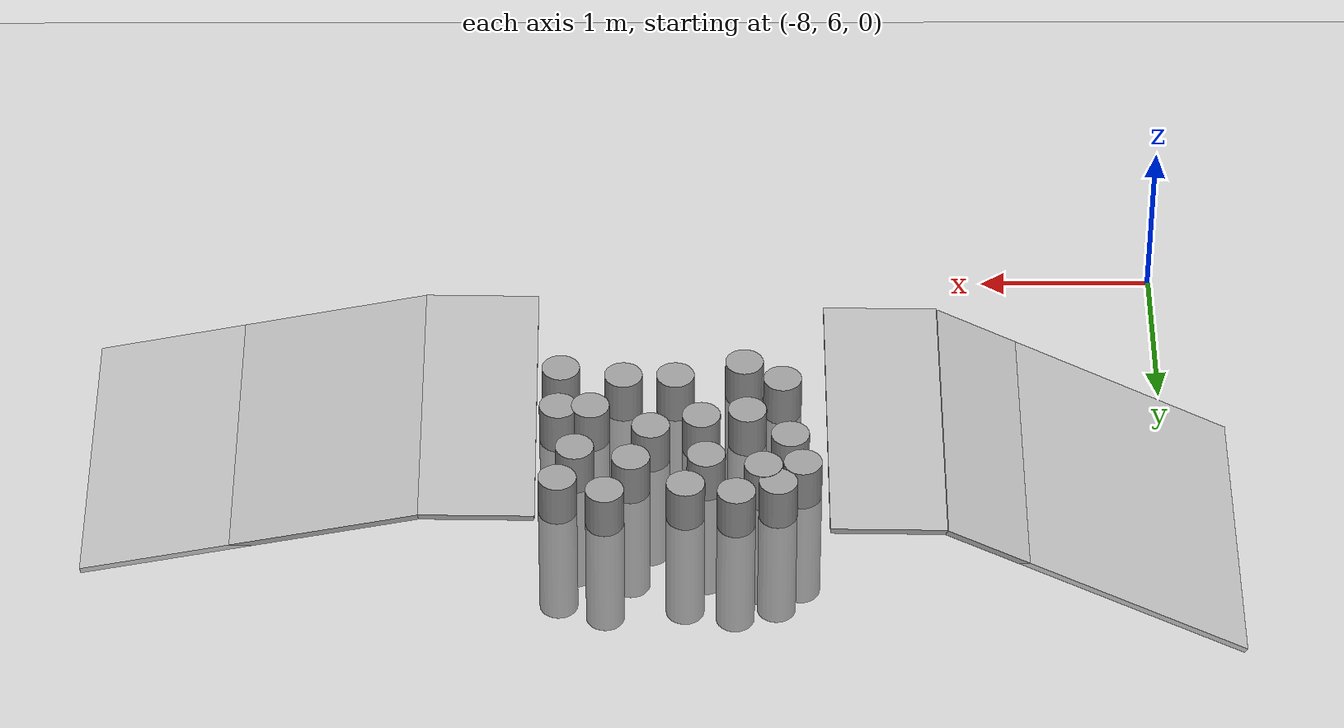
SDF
<sdf version="1.7">
 <world name="default">
  <plugin name="gazebo_ros_state" filename="libgazebo_ros_state.so">
   <ros><namespace>/gazebo</namespace></ros>
   <update_rate>1.0</update_rate>
  </plugin>
  <plugin name="gazebo_ros_properties" filename="libgazebo_ros_properties.so">
   <ros><namespace>/gazebo</namespace></ros>
   <update_rate>1.0</update_rate>
  </plugin>
  <model name="ground_plane">
   <static>1</static>
   <link name="link">
    <collision name="collision">
     <geometry><plane><normal>0 0 1</normal><size>100 100</size></plane></geometry>
     <surface>
      <contact><collide_bitmask>65535</collide_bitmask></contact>
      <friction><ode><mu>1.0</mu><mu2>1.0</mu2></ode></friction>
     </surface>
    </collision>
    <visual name="visual">
     <cast_shadows>0</cast_shadows>
     <geometry><plane><normal>0 0 1</normal><size>100 100</size></plane></geometry>
     <material>
      <script><uri>file://media/materials/scripts/gazebo.material</uri><name>Gazebo/Grey</name></script>
     </material>
    </visual>
   </link>
  </model>
  <light name="sun" type="directional">
   <pose>0 0 10 0 -0 0</pose>
   <diffuse>0.8 0.8 0.8 1</diffuse>
   <specular>0.2 0.2 0.2 1</specular>
   <attenuation>
    <range>1000</range>
    <constant>0.9</constant>
    <linear>0.01</linear>
    <quadratic>0.001</quadratic>
   </attenuation>
   <direction>-0.5 0.1 -0.9</direction>
   <spot><inner_angle>0</inner_angle><outer_angle>0</outer_angle><falloff>0</falloff></spot>
  </light>
  <gravity>0 0 -9.8</gravity>
  <magnetic_field>6e-06 2.3e-05 -4.2e-05</magnetic_field>
  <atmosphere type="adiabatic"/>
  <physics type="ode">
   <max_step_size>0.001</max_step_size>
   <real_time_factor>1</real_time_factor>
   <real_time_update_rate>1000</real_time_update_rate>
  </physics>
  <scene><ambient>0.4 0.4 0.4 1</ambient><background>0.7 0.7 0.7 1</background><shadows>1</shadows></scene>
  <spherical_coordinates>
   <surface_model>EARTH_WGS84</surface_model>
   <latitude_deg>0</latitude_deg>
   <longitude_deg>0</longitude_deg>
   <elevation>0</elevation>
   <heading_deg>0</heading_deg>
  </spherical_coordinates>
  <model name="ramped_stepping_stone_clone_1_clone_clone_2">
   <static>1</static>
   <pose>-4.0201 7.30273 0.204894 0 -0.017033 0</pose>
   <link name="link">
    <collision name="collision"><geometry><box><size>0.666252 1.89779 0.033476</size></box></geometry></collision>
    <visual name="visual"><geometry><box><size>0.666252 1.89779 0.033476</size></box></geometry></visual>
   </link>
  </model>
  <model name="ramped_stepping_stone_clone_1_clone_clone_2_clone">
   <static>1</static>
   <pose>-6.3707 7.45436 0.234508 0 -0.017033 0</pose>
   <link name="link">
    <collision name="collision"><geometry><box><size>0.666252 1.89779 0.033476</size></box></geometry></collision>
    <visual name="visual"><geometry><box><size>0.666252 1.89779 0.033476</size></box></geometry></visual>
   </link>
  </model>
  <model name="ramped_stepping_stone_clone_3">
   <static>1</static>
   <pose>-2.71446 7.30395 0 0 0.212574 0</pose>
   <link name="link">
    <collision name="collision"><geometry><box><size>1.99786 1.89779 0.033476</size></box></geometry></collision>
    <visual name="visual"><geometry><box><size>1.99786 1.89779 0.033476</size></box></geometry></visual>
   </link>
  </model>
  <model name="round_step_clone">
   <link name="link">
    <inertial>
     <mass>0.0497635</mass>
     <inertia>
      <ixx>0.00430173</ixx>
      <ixy>0</ixy>
      <ixz>0</ixz>
      <iyy>0.00430173</iyy>
      <iyz>0</iyz>
      <izz>0.00030955</izz>
     </inertia>
    </inertial>
    <pose>0.001965 -0.009653 -0.499784 1.55252 -0 0</pose>
    <visual name="visual">
     <geometry><cylinder><radius>0.111539</radius><length>1</length></cylinder></geometry>
     <material>
      <script><name>Gazebo/Grey</name><uri>file://media/materials/scripts/gazebo.material</uri></script>
      <shader type="pixel"/>
     </material>
    </visual>
    <collision name="collision">
     <geometry><cylinder><radius>0.111539</radius><length>1</length></cylinder></geometry>
     <surface>
      <friction>
       <ode><mu>1.0</mu><mu2>1.0</mu2><fdir1>0 0 0</fdir1><slip1>0</slip1><slip2>0</slip2></ode>
       <torsional>
        <coefficient>1</coefficient>
        <patch_radius>0</patch_radius>
        <surface_radius>0</surface_radius>
        <use_patch_radius>1</use_patch_radius>
        <ode><slip>0</slip></ode>
       </torsional>
      </friction>
      <bounce><restitution_coefficient>0</restitution_coefficient><threshold>1e+06</threshold></bounce>
      <contact>
       <collide_without_contact>0</collide_without_contact>
       <collide_without_contact_bitmask>1</collide_without_contact_bitmask>
       <collide_bitmask>1</collide_bitmask>
       <ode>
        <soft_cfm>0</soft_cfm>
        <soft_erp>0.2</soft_erp>
        <kp>1e+13</kp>
        <kd>1</kd>
        <max_vel>0.01</max_vel>
        <min_depth>0</min_depth>
       </ode>
       <bullet>
        <split_impulse>1</split_impulse>
        <split_impulse_penetration_threshold>-0.01</split_impulse_penetration_threshold>
        <soft_cfm>0</soft_cfm>
        <soft_erp>0.2</soft_erp>
        <kp>1e+13</kp>
        <kd>1</kd>
       </bullet>
      </contact>
     </surface>
    </collision>
   </link>
   <static>1</static>
   <pose>-4.57955 7.21951 -0.259906 1.61465 -0 0</pose>
  </model>
  <model name="round_step_clone_clone">
   <link name="link">
    <inertial>
     <mass>0.0497635</mass>
     <inertia>
      <ixx>0.00430173</ixx>
      <ixy>0</ixy>
      <ixz>0</ixz>
      <iyy>0.00430173</iyy>
      <iyz>0</iyz>
      <izz>0.00030955</izz>
     </inertia>
    </inertial>
    <pose>0.001965 -0.009653 -0.499784 1.55252 -0 0</pose>
    <visual name="visual">
     <geometry><cylinder><radius>0.111539</radius><length>1</length></cylinder></geometry>
     <material>
      <script><name>Gazebo/Grey</name><uri>file://media/materials/scripts/gazebo.material</uri></script>
      <shader type="pixel"/>
     </material>
    </visual>
    <collision name="collision">
     <geometry><cylinder><radius>0.111539</radius><length>1</length></cylinder></geometry>
     <surface>
      <friction>
       <ode><mu>1.0</mu><mu2>1.0</mu2><fdir1>0 0 0</fdir1><slip1>0</slip1><slip2>0</slip2></ode>
       <torsional>
        <coefficient>1</coefficient>
        <patch_radius>0</patch_radius>
        <surface_radius>0</surface_radius>
        <use_patch_radius>1</use_patch_radius>
        <ode><slip>0</slip></ode>
       </torsional>
      </friction>
      <bounce><restitution_coefficient>0</restitution_coefficient><threshold>1e+06</threshold></bounce>
      <contact>
       <collide_without_contact>0</collide_without_contact>
       <collide_without_contact_bitmask>1</collide_without_contact_bitmask>
       <collide_bitmask>1</collide_bitmask>
       <ode>
        <soft_cfm>0</soft_cfm>
        <soft_erp>0.2</soft_erp>
        <kp>1e+13</kp>
        <kd>1</kd>
        <max_vel>0.01</max_vel>
        <min_depth>0</min_depth>
       </ode>
       <bullet>
        <split_impulse>1</split_impulse>
        <split_impulse_penetration_threshold>-0.01</split_impulse_penetration_threshold>
        <soft_cfm>0</soft_cfm>
        <soft_erp>0.2</soft_erp>
        <kp>1e+13</kp>
        <kd>1</kd>
       </bullet>
      </contact>
     </surface>
    </collision>
   </link>
   <static>1</static>
   <pose>-4.75434 7.58258 -0.259907 1.61465 -0 0</pose>
  </model>
  <model name="round_step_clone_clone_0">
   <link name="link">
    <inertial>
     <mass>0.0497635</mass>
     <inertia>
      <ixx>0.00430173</ixx>
      <ixy>0</ixy>
      <ixz>0</ixz>
      <iyy>0.00430173</iyy>
      <iyz>0</iyz>
      <izz>0.00030955</izz>
     </inertia>
    </inertial>
    <pose>0.001965 -0.009653 -0.499784 1.55252 -0 0</pose>
    <visual name="visual">
     <geometry><cylinder><radius>0.111539</radius><length>1</length></cylinder></geometry>
     <material>
      <script><name>Gazebo/Grey</name><uri>file://media/materials/scripts/gazebo.material</uri></script>
      <shader type="pixel"/>
     </material>
    </visual>
    <collision name="collision">
     <geometry><cylinder><radius>0.111539</radius><length>1</length></cylinder></geometry>
     <surface>
      <friction>
       <ode><mu>1.0</mu><mu2>1.0</mu2><fdir1>0 0 0</fdir1><slip1>0</slip1><slip2>0</slip2></ode>
       <torsional>
        <coefficient>1</coefficient>
        <patch_radius>0</patch_radius>
        <surface_radius>0</surface_radius>
        <use_patch_radius>1</use_patch_radius>
        <ode><slip>0</slip></ode>
       </torsional>
      </friction>
      <bounce><restitution_coefficient>0</restitution_coefficient><threshold>1e+06</threshold></bounce>
      <contact>
       <collide_without_contact>0</collide_without_contact>
       <collide_without_contact_bitmask>1</collide_without_contact_bitmask>
       <collide_bitmask>1</collide_bitmask>
       <ode>
        <soft_cfm>0</soft_cfm>
        <soft_erp>0.2</soft_erp>
        <kp>1e+13</kp>
        <kd>1</kd>
        <max_vel>0.01</max_vel>
        <min_depth>0</min_depth>
       </ode>
       <bullet>
        <split_impulse>1</split_impulse>
        <split_impulse_penetration_threshold>-0.01</split_impulse_penetration_threshold>
        <soft_cfm>0</soft_cfm>
        <soft_erp>0.2</soft_erp>
        <kp>1e+13</kp>
        <kd>1</kd>
       </bullet>
      </contact>
     </surface>
    </collision>
   </link>
   <static>1</static>
   <pose>-4.90346 7.30763 -0.259907 1.61465 -0 0</pose>
  </model>
  <model name="round_step_clone_clone_1">
   <link name="link">
    <inertial>
     <mass>0.0497635</mass>
     <inertia>
      <ixx>0.00430173</ixx>
      <ixy>0</ixy>
      <ixz>0</ixz>
      <iyy>0.00430173</iyy>
      <iyz>0</iyz>
      <izz>0.00030955</izz>
     </inertia>
    </inertial>
    <pose>0.001965 -0.009653 -0.499784 1.55252 -0 0</pose>
    <visual name="visual">
     <geometry><cylinder><radius>0.111539</radius><length>1</length></cylinder></geometry>
     <material>
      <script><name>Gazebo/Grey</name><uri>file://media/materials/scripts/gazebo.material</uri></script>
      <shader type="pixel"/>
     </material>
    </visual>
    <collision name="collision">
     <geometry><cylinder><radius>0.111539</radius><length>1</length></cylinder></geometry>
     <surface>
      <friction>
       <ode><mu>1.0</mu><mu2>1.0</mu2><fdir1>0 0 0</fdir1><slip1>0</slip1><slip2>0</slip2></ode>
       <torsional>
        <coefficient>1</coefficient>
        <patch_radius>0</patch_radius>
        <surface_radius>0</surface_radius>
        <use_patch_radius>1</use_patch_radius>
        <ode><slip>0</slip></ode>
       </torsional>
      </friction>
      <bounce><restitution_coefficient>0</restitution_coefficient><threshold>1e+06</threshold></bounce>
      <contact>
       <collide_without_contact>0</collide_without_contact>
       <collide_without_contact_bitmask>1</collide_without_contact_bitmask>
       <collide_bitmask>1</collide_bitmask>
       <ode>
        <soft_cfm>0</soft_cfm>
        <soft_erp>0.2</soft_erp>
        <kp>1e+13</kp>
        <kd>1</kd>
        <max_vel>0.01</max_vel>
        <min_depth>0</min_depth>
       </ode>
       <bullet>
        <split_impulse>1</split_impulse>
        <split_impulse_penetration_threshold>-0.01</split_impulse_penetration_threshold>
        <soft_cfm>0</soft_cfm>
        <soft_erp>0.2</soft_erp>
        <kp>1e+13</kp>
        <kd>1</kd>
       </bullet>
      </contact>
     </surface>
    </collision>
   </link>
   <static>1</static>
   <pose>-4.66801 6.86691 -0.259907 1.61465 -0 0</pose>
  </model>
  <model name="round_step_clone_clone_2">
   <link name="link">
    <inertial>
     <mass>0.0497635</mass>
     <inertia>
      <ixx>0.00430173</ixx>
      <ixy>0</ixy>
      <ixz>0</ixz>
      <iyy>0.00430173</iyy>
      <iyz>0</iyz>
      <izz>0.00030955</izz>
     </inertia>
    </inertial>
    <pose>0.001965 -0.009653 -0.499784 1.55252 -0 0</pose>
    <visual name="visual">
     <geometry><cylinder><radius>0.111539</radius><length>1</length></cylinder></geometry>
     <material>
      <script><name>Gazebo/Grey</name><uri>file://media/materials/scripts/gazebo.material</uri></script>
      <shader type="pixel"/>
     </material>
    </visual>
    <collision name="collision">
     <geometry><cylinder><radius>0.111539</radius><length>1</length></cylinder></geometry>
     <surface>
      <friction>
       <ode><mu>1.0</mu><mu2>1.0</mu2><fdir1>0 0 0</fdir1><slip1>0</slip1><slip2>0</slip2></ode>
       <torsional>
        <coefficient>1</coefficient>
        <patch_radius>0</patch_radius>
        <surface_radius>0</surface_radius>
        <use_patch_radius>1</use_patch_radius>
        <ode><slip>0</slip></ode>
       </torsional>
      </friction>
      <bounce><restitution_coefficient>0</restitution_coefficient><threshold>1e+06</threshold></bounce>
      <contact>
       <collide_without_contact>0</collide_without_contact>
       <collide_without_contact_bitmask>1</collide_without_contact_bitmask>
       <collide_bitmask>1</collide_bitmask>
       <ode>
        <soft_cfm>0</soft_cfm>
        <soft_erp>0.2</soft_erp>
        <kp>1e+13</kp>
        <kd>1</kd>
        <max_vel>0.01</max_vel>
        <min_depth>0</min_depth>
       </ode>
       <bullet>
        <split_impulse>1</split_impulse>
        <split_impulse_penetration_threshold>-0.01</split_impulse_penetration_threshold>
        <soft_cfm>0</soft_cfm>
        <soft_erp>0.2</soft_erp>
        <kp>1e+13</kp>
        <kd>1</kd>
       </bullet>
      </contact>
     </surface>
    </collision>
   </link>
   <static>1</static>
   <pose>-5.0186 7.03914 -0.259907 1.61465 -0 0</pose>
  </model>
  <model name="round_step_clone_clone_3">
   <link name="link">
    <inertial>
     <mass>0.0497635</mass>
     <inertia>
      <ixx>0.00430173</ixx>
      <ixy>0</ixy>
      <ixz>0</ixz>
      <iyy>0.00430173</iyy>
      <iyz>0</iyz>
      <izz>0.00030955</izz>
     </inertia>
    </inertial>
    <pose>0.001965 -0.009653 -0.499784 1.55252 -0 0</pose>
    <visual name="visual">
     <geometry><cylinder><radius>0.111539</radius><length>1</length></cylinder></geometry>
     <material>
      <script><name>Gazebo/Grey</name><uri>file://media/materials/scripts/gazebo.material</uri></script>
      <shader type="pixel"/>
     </material>
    </visual>
    <collision name="collision">
     <geometry><cylinder><radius>0.111539</radius><length>1</length></cylinder></geometry>
     <surface>
      <friction>
       <ode><mu>1.0</mu><mu2>1.0</mu2><fdir1>0 0 0</fdir1><slip1>0</slip1><slip2>0</slip2></ode>
       <torsional>
        <coefficient>1</coefficient>
        <patch_radius>0</patch_radius>
        <surface_radius>0</surface_radius>
        <use_patch_radius>1</use_patch_radius>
        <ode><slip>0</slip></ode>
       </torsional>
      </friction>
      <bounce><restitution_coefficient>0</restitution_coefficient><threshold>1e+06</threshold></bounce>
      <contact>
       <collide_without_contact>0</collide_without_contact>
       <collide_without_contact_bitmask>1</collide_without_contact_bitmask>
       <collide_bitmask>1</collide_bitmask>
       <ode>
        <soft_cfm>0</soft_cfm>
        <soft_erp>0.2</soft_erp>
        <kp>1e+13</kp>
        <kd>1</kd>
        <max_vel>0.01</max_vel>
        <min_depth>0</min_depth>
       </ode>
       <bullet>
        <split_impulse>1</split_impulse>
        <split_impulse_penetration_threshold>-0.01</split_impulse_penetration_threshold>
        <soft_cfm>0</soft_cfm>
        <soft_erp>0.2</soft_erp>
        <kp>1e+13</kp>
        <kd>1</kd>
       </bullet>
      </contact>
     </surface>
    </collision>
   </link>
   <static>1</static>
   <pose>-5.21817 7.53102 -0.259907 1.61465 -0 0</pose>
  </model>
  <model name="round_step_clone_clone_4">
   <link name="link">
    <inertial>
     <mass>0.0497635</mass>
     <inertia>
      <ixx>0.00430173</ixx>
      <ixy>0</ixy>
      <ixz>0</ixz>
      <iyy>0.00430173</iyy>
      <iyz>0</iyz>
      <izz>0.00030955</izz>
     </inertia>
    </inertial>
    <pose>0.001965 -0.009653 -0.499784 1.55252 -0 0</pose>
    <visual name="visual">
     <geometry><cylinder><radius>0.111539</radius><length>1</length></cylinder></geometry>
     <material>
      <script><name>Gazebo/Grey</name><uri>file://media/materials/scripts/gazebo.material</uri></script>
      <shader type="pixel"/>
     </material>
    </visual>
    <collision name="collision">
     <geometry><cylinder><radius>0.111539</radius><length>1</length></cylinder></geometry>
     <surface>
      <friction>
       <ode><mu>1.0</mu><mu2>1.0</mu2><fdir1>0 0 0</fdir1><slip1>0</slip1><slip2>0</slip2></ode>
       <torsional>
        <coefficient>1</coefficient>
        <patch_radius>0</patch_radius>
        <surface_radius>0</surface_radius>
        <use_patch_radius>1</use_patch_radius>
        <ode><slip>0</slip></ode>
       </torsional>
      </friction>
      <bounce><restitution_coefficient>0</restitution_coefficient><threshold>1e+06</threshold></bounce>
      <contact>
       <collide_without_contact>0</collide_without_contact>
       <collide_without_contact_bitmask>1</collide_without_contact_bitmask>
       <collide_bitmask>1</collide_bitmask>
       <ode>
        <soft_cfm>0</soft_cfm>
        <soft_erp>0.2</soft_erp>
        <kp>1e+13</kp>
        <kd>1</kd>
        <max_vel>0.01</max_vel>
        <min_depth>0</min_depth>
       </ode>
       <bullet>
        <split_impulse>1</split_impulse>
        <split_impulse_penetration_threshold>-0.01</split_impulse_penetration_threshold>
        <soft_cfm>0</soft_cfm>
        <soft_erp>0.2</soft_erp>
        <kp>1e+13</kp>
        <kd>1</kd>
       </bullet>
      </contact>
     </surface>
    </collision>
   </link>
   <static>1</static>
   <pose>-5.33829 7.28402 -0.259907 1.61465 -0 0</pose>
  </model>
  <model name="round_step_clone_clone_5">
   <link name="link">
    <inertial>
     <mass>0.0497635</mass>
     <inertia>
      <ixx>0.00430173</ixx>
      <ixy>0</ixy>
      <ixz>0</ixz>
      <iyy>0.00430173</iyy>
      <iyz>0</iyz>
      <izz>0.00030955</izz>
     </inertia>
    </inertial>
    <pose>0.001965 -0.009653 -0.499784 1.55252 -0 0</pose>
    <visual name="visual">
     <geometry><cylinder><radius>0.111539</radius><length>1</length></cylinder></geometry>
     <material>
      <script><name>Gazebo/Grey</name><uri>file://media/materials/scripts/gazebo.material</uri></script>
      <shader type="pixel"/>
     </material>
    </visual>
    <collision name="collision">
     <geometry><cylinder><radius>0.111539</radius><length>1</length></cylinder></geometry>
     <surface>
      <friction>
       <ode><mu>1.0</mu><mu2>1.0</mu2><fdir1>0 0 0</fdir1><slip1>0</slip1><slip2>0</slip2></ode>
       <torsional>
        <coefficient>1</coefficient>
        <patch_radius>0</patch_radius>
        <surface_radius>0</surface_radius>
        <use_patch_radius>1</use_patch_radius>
        <ode><slip>0</slip></ode>
       </torsional>
      </friction>
      <bounce><restitution_coefficient>0</restitution_coefficient><threshold>1e+06</threshold></bounce>
      <contact>
       <collide_without_contact>0</collide_without_contact>
       <collide_without_contact_bitmask>1</collide_without_contact_bitmask>
       <collide_bitmask>1</collide_bitmask>
       <ode>
        <soft_cfm>0</soft_cfm>
        <soft_erp>0.2</soft_erp>
        <kp>1e+13</kp>
        <kd>1</kd>
        <max_vel>0.01</max_vel>
        <min_depth>0</min_depth>
       </ode>
       <bullet>
        <split_impulse>1</split_impulse>
        <split_impulse_penetration_threshold>-0.01</split_impulse_penetration_threshold>
        <soft_cfm>0</soft_cfm>
        <soft_erp>0.2</soft_erp>
        <kp>1e+13</kp>
        <kd>1</kd>
       </bullet>
      </contact>
     </surface>
    </collision>
   </link>
   <static>1</static>
   <pose>-5.31255 6.94999 -0.259907 1.61465 -0 0</pose>
  </model>
  <model name="round_step_clone_clone_6">
   <link name="link">
    <inertial>
     <mass>0.0497635</mass>
     <inertia>
      <ixx>0.00430173</ixx>
      <ixy>0</ixy>
      <ixz>0</ixz>
      <iyy>0.00430173</iyy>
      <iyz>0</iyz>
      <izz>0.00030955</izz>
     </inertia>
    </inertial>
    <pose>0.001965 -0.009653 -0.499784 1.55252 -0 0</pose>
    <visual name="visual">
     <geometry><cylinder><radius>0.111539</radius><length>1</length></cylinder></geometry>
     <material>
      <script><name>Gazebo/Grey</name><uri>file://media/materials/scripts/gazebo.material</uri></script>
      <shader type="pixel"/>
     </material>
    </visual>
    <collision name="collision">
     <geometry><cylinder><radius>0.111539</radius><length>1</length></cylinder></geometry>
     <surface>
      <friction>
       <ode><mu>1.0</mu><mu2>1.0</mu2><fdir1>0 0 0</fdir1><slip1>0</slip1><slip2>0</slip2></ode>
       <torsional>
        <coefficient>1</coefficient>
        <patch_radius>0</patch_radius>
        <surface_radius>0</surface_radius>
        <use_patch_radius>1</use_patch_radius>
        <ode><slip>0</slip></ode>
       </torsional>
      </friction>
      <bounce><restitution_coefficient>0</restitution_coefficient><threshold>1e+06</threshold></bounce>
      <contact>
       <collide_without_contact>0</collide_without_contact>
       <collide_without_contact_bitmask>1</collide_without_contact_bitmask>
       <collide_bitmask>1</collide_bitmask>
       <ode>
        <soft_cfm>0</soft_cfm>
        <soft_erp>0.2</soft_erp>
        <kp>1e+13</kp>
        <kd>1</kd>
        <max_vel>0.01</max_vel>
        <min_depth>0</min_depth>
       </ode>
       <bullet>
        <split_impulse>1</split_impulse>
        <split_impulse_penetration_threshold>-0.01</split_impulse_penetration_threshold>
        <soft_cfm>0</soft_cfm>
        <soft_erp>0.2</soft_erp>
        <kp>1e+13</kp>
        <kd>1</kd>
       </bullet>
      </contact>
     </surface>
    </collision>
   </link>
   <static>1</static>
   <pose>-4.85952 6.60455 -0.259907 1.61465 -0 0</pose>
  </model>
  <model name="round_step_clone_clone_7">
   <link name="link">
    <inertial>
     <mass>0.0497635</mass>
     <inertia>
      <ixx>0.00430173</ixx>
      <ixy>0</ixy>
      <ixz>0</ixz>
      <iyy>0.00430173</iyy>
      <iyz>0</iyz>
      <izz>0.00030955</izz>
     </inertia>
    </inertial>
    <pose>0.001965 -0.009653 -0.499784 1.55252 -0 0</pose>
    <visual name="visual">
     <geometry><cylinder><radius>0.111539</radius><length>1</length></cylinder></geometry>
     <material>
      <script><name>Gazebo/Grey</name><uri>file://media/materials/scripts/gazebo.material</uri></script>
      <shader type="pixel"/>
     </material>
    </visual>
    <collision name="collision">
     <geometry><cylinder><radius>0.111539</radius><length>1</length></cylinder></geometry>
     <surface>
      <friction>
       <ode><mu>1.0</mu><mu2>1.0</mu2><fdir1>0 0 0</fdir1><slip1>0</slip1><slip2>0</slip2></ode>
       <torsional>
        <coefficient>1</coefficient>
        <patch_radius>0</patch_radius>
        <surface_radius>0</surface_radius>
        <use_patch_radius>1</use_patch_radius>
        <ode><slip>0</slip></ode>
       </torsional>
      </friction>
      <bounce><restitution_coefficient>0</restitution_coefficient><threshold>1e+06</threshold></bounce>
      <contact>
       <collide_without_contact>0</collide_without_contact>
       <collide_without_contact_bitmask>1</collide_without_contact_bitmask>
       <collide_bitmask>1</collide_bitmask>
       <ode>
        <soft_cfm>0</soft_cfm>
        <soft_erp>0.2</soft_erp>
        <kp>1e+13</kp>
        <kd>1</kd>
        <max_vel>0.01</max_vel>
        <min_depth>0</min_depth>
       </ode>
       <bullet>
        <split_impulse>1</split_impulse>
        <split_impulse_penetration_threshold>-0.01</split_impulse_penetration_threshold>
        <soft_cfm>0</soft_cfm>
        <soft_erp>0.2</soft_erp>
        <kp>1e+13</kp>
        <kd>1</kd>
       </bullet>
      </contact>
     </surface>
    </collision>
   </link>
   <static>1</static>
   <pose>-5.58092 6.90475 -0.259907 1.61465 -0 0</pose>
  </model>
  <model name="round_step_clone_clone_8">
   <link name="link">
    <inertial>
     <mass>0.0497635</mass>
     <inertia>
      <ixx>0.00430173</ixx>
      <ixy>0</ixy>
      <ixz>0</ixz>
      <iyy>0.00430173</iyy>
      <iyz>0</iyz>
      <izz>0.00030955</izz>
     </inertia>
    </inertial>
    <pose>0.001965 -0.009653 -0.499784 1.55252 -0 0</pose>
    <visual name="visual">
     <geometry><cylinder><radius>0.111539</radius><length>1</length></cylinder></geometry>
     <material>
      <script><name>Gazebo/Grey</name><uri>file://media/materials/scripts/gazebo.material</uri></script>
      <shader type="pixel"/>
     </material>
    </visual>
    <collision name="collision">
     <geometry><cylinder><radius>0.111539</radius><length>1</length></cylinder></geometry>
     <surface>
      <friction>
       <ode><mu>1.0</mu><mu2>1.0</mu2><fdir1>0 0 0</fdir1><slip1>0</slip1><slip2>0</slip2></ode>
       <torsional>
        <coefficient>1</coefficient>
        <patch_radius>0</patch_radius>
        <surface_radius>0</surface_radius>
        <use_patch_radius>1</use_patch_radius>
        <ode><slip>0</slip></ode>
       </torsional>
      </friction>
      <bounce><restitution_coefficient>0</restitution_coefficient><threshold>1e+06</threshold></bounce>
      <contact>
       <collide_without_contact>0</collide_without_contact>
       <collide_without_contact_bitmask>1</collide_without_contact_bitmask>
       <collide_bitmask>1</collide_bitmask>
       <ode>
        <soft_cfm>0</soft_cfm>
        <soft_erp>0.2</soft_erp>
        <kp>1e+13</kp>
        <kd>1</kd>
        <max_vel>0.01</max_vel>
        <min_depth>0</min_depth>
       </ode>
       <bullet>
        <split_impulse>1</split_impulse>
        <split_impulse_penetration_threshold>-0.01</split_impulse_penetration_threshold>
        <soft_cfm>0</soft_cfm>
        <soft_erp>0.2</soft_erp>
        <kp>1e+13</kp>
        <kd>1</kd>
       </bullet>
      </contact>
     </surface>
    </collision>
   </link>
   <static>1</static>
   <pose>-5.66805 7.36995 -0.259907 1.61465 -0 0</pose>
  </model>
  <model name="round_step_clone_clone_9">
   <link name="link">
    <inertial>
     <mass>0.0497635</mass>
     <inertia>
      <ixx>0.00430173</ixx>
      <ixy>0</ixy>
      <ixz>0</ixz>
      <iyy>0.00430173</iyy>
      <iyz>0</iyz>
      <izz>0.00030955</izz>
     </inertia>
    </inertial>
    <pose>0.001965 -0.009653 -0.499784 1.55252 -0 0</pose>
    <visual name="visual">
     <geometry><cylinder><radius>0.111539</radius><length>1</length></cylinder></geometry>
     <material>
      <script><name>Gazebo/Grey</name><uri>file://media/materials/scripts/gazebo.material</uri></script>
      <shader type="pixel"/>
     </material>
    </visual>
    <collision name="collision">
     <geometry><cylinder><radius>0.111539</radius><length>1</length></cylinder></geometry>
     <surface>
      <friction>
       <ode><mu>1.0</mu><mu2>1.0</mu2><fdir1>0 0 0</fdir1><slip1>0</slip1><slip2>0</slip2></ode>
       <torsional>
        <coefficient>1</coefficient>
        <patch_radius>0</patch_radius>
        <surface_radius>0</surface_radius>
        <use_patch_radius>1</use_patch_radius>
        <ode><slip>0</slip></ode>
       </torsional>
      </friction>
      <bounce><restitution_coefficient>0</restitution_coefficient><threshold>1e+06</threshold></bounce>
      <contact>
       <collide_without_contact>0</collide_without_contact>
       <collide_without_contact_bitmask>1</collide_without_contact_bitmask>
       <collide_bitmask>1</collide_bitmask>
       <ode>
        <soft_cfm>0</soft_cfm>
        <soft_erp>0.2</soft_erp>
        <kp>1e+13</kp>
        <kd>1</kd>
        <max_vel>0.01</max_vel>
        <min_depth>0</min_depth>
       </ode>
       <bullet>
        <split_impulse>1</split_impulse>
        <split_impulse_penetration_threshold>-0.01</split_impulse_penetration_threshold>
        <soft_cfm>0</soft_cfm>
        <soft_erp>0.2</soft_erp>
        <kp>1e+13</kp>
        <kd>1</kd>
       </bullet>
      </contact>
     </surface>
    </collision>
   </link>
   <static>1</static>
   <pose>-5.50936 7.59353 -0.259907 1.61465 -0 0</pose>
  </model>
  <model name="round_step_clone_clone_10">
   <link name="link">
    <inertial>
     <mass>0.0497635</mass>
     <inertia>
      <ixx>0.00430173</ixx>
      <ixy>0</ixy>
      <ixz>0</ixz>
      <iyy>0.00430173</iyy>
      <iyz>0</iyz>
      <izz>0.00030955</izz>
     </inertia>
    </inertial>
    <pose>0.001965 -0.009653 -0.499784 1.55252 -0 0</pose>
    <visual name="visual">
     <geometry><cylinder><radius>0.111539</radius><length>1</length></cylinder></geometry>
     <material>
      <script><name>Gazebo/Grey</name><uri>file://media/materials/scripts/gazebo.material</uri></script>
      <shader type="pixel"/>
     </material>
    </visual>
    <collision name="collision">
     <geometry><cylinder><radius>0.111539</radius><length>1</length></cylinder></geometry>
     <surface>
      <friction>
       <ode><mu>1.0</mu><mu2>1.0</mu2><fdir1>0 0 0</fdir1><slip1>0</slip1><slip2>0</slip2></ode>
       <torsional>
        <coefficient>1</coefficient>
        <patch_radius>0</patch_radius>
        <surface_radius>0</surface_radius>
        <use_patch_radius>1</use_patch_radius>
        <ode><slip>0</slip></ode>
       </torsional>
      </friction>
      <bounce><restitution_coefficient>0</restitution_coefficient><threshold>1e+06</threshold></bounce>
      <contact>
       <collide_without_contact>0</collide_without_contact>
       <collide_without_contact_bitmask>1</collide_without_contact_bitmask>
       <collide_bitmask>1</collide_bitmask>
       <ode>
        <soft_cfm>0</soft_cfm>
        <soft_erp>0.2</soft_erp>
        <kp>1e+13</kp>
        <kd>1</kd>
        <max_vel>0.01</max_vel>
        <min_depth>0</min_depth>
       </ode>
       <bullet>
        <split_impulse>1</split_impulse>
        <split_impulse_penetration_threshold>-0.01</split_impulse_penetration_threshold>
        <soft_cfm>0</soft_cfm>
        <soft_erp>0.2</soft_erp>
        <kp>1e+13</kp>
        <kd>1</kd>
       </bullet>
      </contact>
     </surface>
    </collision>
   </link>
   <static>1</static>
   <pose>-5.82641 7.11341 -0.259907 1.61465 -0 0</pose>
  </model>
  <model name="round_step_clone_clone_11">
   <link name="link">
    <inertial>
     <mass>0.0497635</mass>
     <inertia>
      <ixx>0.00430173</ixx>
      <ixy>0</ixy>
      <ixz>0</ixz>
      <iyy>0.00430173</iyy>
      <iyz>0</iyz>
      <izz>0.00030955</izz>
     </inertia>
    </inertial>
    <pose>0.001965 -0.009653 -0.499784 1.55252 -0 0</pose>
    <visual name="visual">
     <geometry><cylinder><radius>0.111539</radius><length>1</length></cylinder></geometry>
     <material>
      <script><name>Gazebo/Grey</name><uri>file://media/materials/scripts/gazebo.material</uri></script>
      <shader type="pixel"/>
     </material>
    </visual>
    <collision name="collision">
     <geometry><cylinder><radius>0.111539</radius><length>1</length></cylinder></geometry>
     <surface>
      <friction>
       <ode><mu>1.0</mu><mu2>1.0</mu2><fdir1>0 0 0</fdir1><slip1>0</slip1><slip2>0</slip2></ode>
       <torsional>
        <coefficient>1</coefficient>
        <patch_radius>0</patch_radius>
        <surface_radius>0</surface_radius>
        <use_patch_radius>1</use_patch_radius>
        <ode><slip>0</slip></ode>
       </torsional>
      </friction>
      <bounce><restitution_coefficient>0</restitution_coefficient><threshold>1e+06</threshold></bounce>
      <contact>
       <collide_without_contact>0</collide_without_contact>
       <collide_without_contact_bitmask>1</collide_without_contact_bitmask>
       <collide_bitmask>1</collide_bitmask>
       <ode>
        <soft_cfm>0</soft_cfm>
        <soft_erp>0.2</soft_erp>
        <kp>1e+13</kp>
        <kd>1</kd>
        <max_vel>0.01</max_vel>
        <min_depth>0</min_depth>
       </ode>
       <bullet>
        <split_impulse>1</split_impulse>
        <split_impulse_penetration_threshold>-0.01</split_impulse_penetration_threshold>
        <soft_cfm>0</soft_cfm>
        <soft_erp>0.2</soft_erp>
        <kp>1e+13</kp>
        <kd>1</kd>
       </bullet>
      </contact>
     </surface>
    </collision>
   </link>
   <static>1</static>
   <pose>-5.16319 6.60487 -0.259907 1.61465 -0 0</pose>
  </model>
  <model name="round_step_clone_clone_12">
   <link name="link">
    <inertial>
     <mass>0.0497635</mass>
     <inertia>
      <ixx>0.00430173</ixx>
      <ixy>0</ixy>
      <ixz>0</ixz>
      <iyy>0.00430173</iyy>
      <iyz>0</iyz>
      <izz>0.00030955</izz>
     </inertia>
    </inertial>
    <pose>0.001965 -0.009653 -0.499784 1.55252 -0 0</pose>
    <visual name="visual">
     <geometry><cylinder><radius>0.111539</radius><length>1</length></cylinder></geometry>
     <material>
      <script><name>Gazebo/Grey</name><uri>file://media/materials/scripts/gazebo.material</uri></script>
      <shader type="pixel"/>
     </material>
    </visual>
    <collision name="collision">
     <geometry><cylinder><radius>0.111539</radius><length>1</length></cylinder></geometry>
     <surface>
      <friction>
       <ode><mu>1.0</mu><mu2>1.0</mu2><fdir1>0 0 0</fdir1><slip1>0</slip1><slip2>0</slip2></ode>
       <torsional>
        <coefficient>1</coefficient>
        <patch_radius>0</patch_radius>
        <surface_radius>0</surface_radius>
        <use_patch_radius>1</use_patch_radius>
        <ode><slip>0</slip></ode>
       </torsional>
      </friction>
      <bounce><restitution_coefficient>0</restitution_coefficient><threshold>1e+06</threshold></bounce>
      <contact>
       <collide_without_contact>0</collide_without_contact>
       <collide_without_contact_bitmask>1</collide_without_contact_bitmask>
       <collide_bitmask>1</collide_bitmask>
       <ode>
        <soft_cfm>0</soft_cfm>
        <soft_erp>0.2</soft_erp>
        <kp>1e+13</kp>
        <kd>1</kd>
        <max_vel>0.01</max_vel>
        <min_depth>0</min_depth>
       </ode>
       <bullet>
        <split_impulse>1</split_impulse>
        <split_impulse_penetration_threshold>-0.01</split_impulse_penetration_threshold>
        <soft_cfm>0</soft_cfm>
        <soft_erp>0.2</soft_erp>
        <kp>1e+13</kp>
        <kd>1</kd>
       </bullet>
      </contact>
     </surface>
    </collision>
   </link>
   <static>1</static>
   <pose>-5.56848 6.49181 -0.259907 1.61465 -0 0</pose>
  </model>
  <model name="round_step_clone_clone_13">
   <link name="link">
    <inertial>
     <mass>0.0497635</mass>
     <inertia>
      <ixx>0.00430173</ixx>
      <ixy>0</ixy>
      <ixz>0</ixz>
      <iyy>0.00430173</iyy>
      <iyz>0</iyz>
      <izz>0.00030955</izz>
     </inertia>
    </inertial>
    <pose>0.001965 -0.009653 -0.499784 1.55252 -0 0</pose>
    <visual name="visual">
     <geometry><cylinder><radius>0.111539</radius><length>1</length></cylinder></geometry>
     <material>
      <script><name>Gazebo/Grey</name><uri>file://media/materials/scripts/gazebo.material</uri></script>
      <shader type="pixel"/>
     </material>
    </visual>
    <collision name="collision">
     <geometry><cylinder><radius>0.111539</radius><length>1</length></cylinder></geometry>
     <surface>
      <friction>
       <ode><mu>1.0</mu><mu2>1.0</mu2><fdir1>0 0 0</fdir1><slip1>0</slip1><slip2>0</slip2></ode>
       <torsional>
        <coefficient>1</coefficient>
        <patch_radius>0</patch_radius>
        <surface_radius>0</surface_radius>
        <use_patch_radius>1</use_patch_radius>
        <ode><slip>0</slip></ode>
       </torsional>
      </friction>
      <bounce><restitution_coefficient>0</restitution_coefficient><threshold>1e+06</threshold></bounce>
      <contact>
       <collide_without_contact>0</collide_without_contact>
       <collide_without_contact_bitmask>1</collide_without_contact_bitmask>
       <collide_bitmask>1</collide_bitmask>
       <ode>
        <soft_cfm>0</soft_cfm>
        <soft_erp>0.2</soft_erp>
        <kp>1e+13</kp>
        <kd>1</kd>
        <max_vel>0.01</max_vel>
        <min_depth>0</min_depth>
       </ode>
       <bullet>
        <split_impulse>1</split_impulse>
        <split_impulse_penetration_threshold>-0.01</split_impulse_penetration_threshold>
        <soft_cfm>0</soft_cfm>
        <soft_erp>0.2</soft_erp>
        <kp>1e+13</kp>
        <kd>1</kd>
       </bullet>
      </contact>
     </surface>
    </collision>
   </link>
   <static>1</static>
   <pose>-5.78977 6.63593 -0.259907 1.61465 -0 0</pose>
  </model>
  <model name="round_step_clone_clone_14">
   <link name="link">
    <inertial>
     <mass>0.0497635</mass>
     <inertia>
      <ixx>0.00430173</ixx>
      <ixy>0</ixy>
      <ixz>0</ixz>
      <iyy>0.00430173</iyy>
      <iyz>0</iyz>
      <izz>0.00030955</izz>
     </inertia>
    </inertial>
    <pose>0.001965 -0.009653 -0.499784 1.55252 -0 0</pose>
    <visual name="visual">
     <geometry><cylinder><radius>0.111539</radius><length>1</length></cylinder></geometry>
     <material>
      <script><name>Gazebo/Grey</name><uri>file://media/materials/scripts/gazebo.material</uri></script>
      <shader type="pixel"/>
     </material>
    </visual>
    <collision name="collision">
     <geometry><cylinder><radius>0.111539</radius><length>1</length></cylinder></geometry>
     <surface>
      <friction>
       <ode><mu>1.0</mu><mu2>1.0</mu2><fdir1>0 0 0</fdir1><slip1>0</slip1><slip2>0</slip2></ode>
       <torsional>
        <coefficient>1</coefficient>
        <patch_radius>0</patch_radius>
        <surface_radius>0</surface_radius>
        <use_patch_radius>1</use_patch_radius>
        <ode><slip>0</slip></ode>
       </torsional>
      </friction>
      <bounce><restitution_coefficient>0</restitution_coefficient><threshold>1e+06</threshold></bounce>
      <contact>
       <collide_without_contact>0</collide_without_contact>
       <collide_without_contact_bitmask>1</collide_without_contact_bitmask>
       <collide_bitmask>1</collide_bitmask>
       <ode>
        <soft_cfm>0</soft_cfm>
        <soft_erp>0.2</soft_erp>
        <kp>1e+13</kp>
        <kd>1</kd>
        <max_vel>0.01</max_vel>
        <min_depth>0</min_depth>
       </ode>
       <bullet>
        <split_impulse>1</split_impulse>
        <split_impulse_penetration_threshold>-0.01</split_impulse_penetration_threshold>
        <soft_cfm>0</soft_cfm>
        <soft_erp>0.2</soft_erp>
        <kp>1e+13</kp>
        <kd>1</kd>
       </bullet>
      </contact>
     </surface>
    </collision>
   </link>
   <static>1</static>
   <pose>-5.75052 7.51593 -0.259907 1.61465 -0 0</pose>
  </model>
  <model name="round_step_clone_clone_15">
   <link name="link">
    <inertial>
     <mass>0.0497635</mass>
     <inertia>
      <ixx>0.00430173</ixx>
      <ixy>0</ixy>
      <ixz>0</ixz>
      <iyy>0.00430173</iyy>
      <iyz>0</iyz>
      <izz>0.00030955</izz>
     </inertia>
    </inertial>
    <pose>0.001965 -0.009653 -0.499784 1.55252 -0 0</pose>
    <visual name="visual">
     <geometry><cylinder><radius>0.111539</radius><length>1</length></cylinder></geometry>
     <material>
      <script><name>Gazebo/Grey</name><uri>file://media/materials/scripts/gazebo.material</uri></script>
      <shader type="pixel"/>
     </material>
    </visual>
    <collision name="collision">
     <geometry><cylinder><radius>0.111539</radius><length>1</length></cylinder></geometry>
     <surface>
      <friction>
       <ode><mu>1.0</mu><mu2>1.0</mu2><fdir1>0 0 0</fdir1><slip1>0</slip1><slip2>0</slip2></ode>
       <torsional>
        <coefficient>1</coefficient>
        <patch_radius>0</patch_radius>
        <surface_radius>0</surface_radius>
        <use_patch_radius>1</use_patch_radius>
        <ode><slip>0</slip></ode>
       </torsional>
      </friction>
      <bounce><restitution_coefficient>0</restitution_coefficient><threshold>1e+06</threshold></bounce>
      <contact>
       <collide_without_contact>0</collide_without_contact>
       <collide_without_contact_bitmask>1</collide_without_contact_bitmask>
       <collide_bitmask>1</collide_bitmask>
       <ode>
        <soft_cfm>0</soft_cfm>
        <soft_erp>0.2</soft_erp>
        <kp>1e+13</kp>
        <kd>1</kd>
        <max_vel>0.01</max_vel>
        <min_depth>0</min_depth>
       </ode>
       <bullet>
        <split_impulse>1</split_impulse>
        <split_impulse_penetration_threshold>-0.01</split_impulse_penetration_threshold>
        <soft_cfm>0</soft_cfm>
        <soft_erp>0.2</soft_erp>
        <kp>1e+13</kp>
        <kd>1</kd>
       </bullet>
      </contact>
     </surface>
    </collision>
   </link>
   <static>1</static>
   <pose>-5.89475 7.35287 -0.259907 1.61465 -0 0</pose>
  </model>
  <model name="ramped_stepping_stone_clone_3_clone">
   <static>1</static>
   <pose>-7.58094 7.46128 -0.240054 0 -0.492052 0</pose>
   <link name="link">
    <collision name="collision"><geometry><box><size>1.99786 1.89779 0.033476</size></box></geometry></collision>
    <visual name="visual"><geometry><box><size>1.99786 1.89779 0.033476</size></box></geometry></visual>
   </link>
  </model>
  <model name="round_step_clone_clone_1_clone">
   <link name="link">
    <inertial>
     <mass>0.0497635</mass>
     <inertia>
      <ixx>0.00430173</ixx>
      <ixy>0</ixy>
      <ixz>0</ixz>
      <iyy>0.00430173</iyy>
      <iyz>0</iyz>
      <izz>0.00030955</izz>
     </inertia>
    </inertial>
    <pose>0.001965 -0.009653 -0.499784 1.55252 -0 0</pose>
    <visual name="visual">
     <geometry><cylinder><radius>0.111539</radius><length>1</length></cylinder></geometry>
     <material>
      <script><name>Gazebo/Grey</name><uri>file://media/materials/scripts/gazebo.material</uri></script>
      <shader type="pixel"/>
     </material>
    </visual>
    <collision name="collision">
     <geometry><cylinder><radius>0.111539</radius><length>1</length></cylinder></geometry>
     <surface>
      <friction>
       <ode><mu>1.0</mu><mu2>1.0</mu2><fdir1>0 0 0</fdir1><slip1>0</slip1><slip2>0</slip2></ode>
       <torsional>
        <coefficient>1</coefficient>
        <patch_radius>0</patch_radius>
        <surface_radius>0</surface_radius>
        <use_patch_radius>1</use_patch_radius>
        <ode><slip>0</slip></ode>
       </torsional>
      </friction>
      <bounce><restitution_coefficient>0</restitution_coefficient><threshold>1e+06</threshold></bounce>
      <contact>
       <collide_without_contact>0</collide_without_contact>
       <collide_without_contact_bitmask>1</collide_without_contact_bitmask>
       <collide_bitmask>1</collide_bitmask>
       <ode>
        <soft_cfm>0</soft_cfm>
        <soft_erp>0.2</soft_erp>
        <kp>1e+13</kp>
        <kd>1</kd>
        <max_vel>0.01</max_vel>
        <min_depth>0</min_depth>
       </ode>
       <bullet>
        <split_impulse>1</split_impulse>
        <split_impulse_penetration_threshold>-0.01</split_impulse_penetration_threshold>
        <soft_cfm>0</soft_cfm>
        <soft_erp>0.2</soft_erp>
        <kp>1e+13</kp>
        <kd>1</kd>
       </bullet>
      </contact>
     </surface>
    </collision>
   </link>
   <static>1</static>
   <pose>-4.49317 6.54074 -0.259907 1.61465 -0 0</pose>
  </model>
  <model name="round_step_clone_clone_1_clone_0">
   <link name="link">
    <inertial>
     <mass>0.0497635</mass>
     <inertia>
      <ixx>0.00430173</ixx>
      <ixy>0</ixy>
      <ixz>0</ixz>
      <iyy>0.00430173</iyy>
      <iyz>0</iyz>
      <izz>0.00030955</izz>
     </inertia>
    </inertial>
    <pose>0.001965 -0.009653 -0.499784 1.55252 -0 0</pose>
    <visual name="visual">
     <geometry><cylinder><radius>0.111539</radius><length>1</length></cylinder></geometry>
     <material>
      <script><name>Gazebo/Grey</name><uri>file://media/materials/scripts/gazebo.material</uri></script>
      <shader type="pixel"/>
     </material>
    </visual>
    <collision name="collision">
     <geometry><cylinder><radius>0.111539</radius><length>1</length></cylinder></geometry>
     <surface>
      <friction>
       <ode><mu>1.0</mu><mu2>1.0</mu2><fdir1>0 0 0</fdir1><slip1>0</slip1><slip2>0</slip2></ode>
       <torsional>
        <coefficient>1</coefficient>
        <patch_radius>0</patch_radius>
        <surface_radius>0</surface_radius>
        <use_patch_radius>1</use_patch_radius>
        <ode><slip>0</slip></ode>
       </torsional>
      </friction>
      <bounce><restitution_coefficient>0</restitution_coefficient><threshold>1e+06</threshold></bounce>
      <contact>
       <collide_without_contact>0</collide_without_contact>
       <collide_without_contact_bitmask>1</collide_without_contact_bitmask>
       <collide_bitmask>1</collide_bitmask>
       <ode>
        <soft_cfm>0</soft_cfm>
        <soft_erp>0.2</soft_erp>
        <kp>1e+13</kp>
        <kd>1</kd>
        <max_vel>0.01</max_vel>
        <min_depth>0</min_depth>
       </ode>
       <bullet>
        <split_impulse>1</split_impulse>
        <split_impulse_penetration_threshold>-0.01</split_impulse_penetration_threshold>
        <soft_cfm>0</soft_cfm>
        <soft_erp>0.2</soft_erp>
        <kp>1e+13</kp>
        <kd>1</kd>
       </bullet>
      </contact>
     </surface>
    </collision>
   </link>
   <static>1</static>
   <pose>-4.48196 6.86965 -0.259907 1.61465 -0 0</pose>
  </model>
  <model name="round_step_clone_clone_1_clone_1">
   <link name="link">
    <inertial>
     <mass>0.0497635</mass>
     <inertia>
      <ixx>0.00430173</ixx>
      <ixy>0</ixy>
      <ixz>0</ixz>
      <iyy>0.00430173</iyy>
      <iyz>0</iyz>
      <izz>0.00030955</izz>
     </inertia>
    </inertial>
    <pose>0.001965 -0.009653 -0.499784 1.55252 -0 0</pose>
    <visual name="visual">
     <geometry><cylinder><radius>0.111539</radius><length>1</length></cylinder></geometry>
     <material>
      <script><name>Gazebo/Grey</name><uri>file://media/materials/scripts/gazebo.material</uri></script>
      <shader type="pixel"/>
     </material>
    </visual>
    <collision name="collision">
     <geometry><cylinder><radius>0.111539</radius><length>1</length></cylinder></geometry>
     <surface>
      <friction>
       <ode><mu>1.0</mu><mu2>1.0</mu2><fdir1>0 0 0</fdir1><slip1>0</slip1><slip2>0</slip2></ode>
       <torsional>
        <coefficient>1</coefficient>
        <patch_radius>0</patch_radius>
        <surface_radius>0</surface_radius>
        <use_patch_radius>1</use_patch_radius>
        <ode><slip>0</slip></ode>
       </torsional>
      </friction>
      <bounce><restitution_coefficient>0</restitution_coefficient><threshold>1e+06</threshold></bounce>
      <contact>
       <collide_without_contact>0</collide_without_contact>
       <collide_without_contact_bitmask>1</collide_without_contact_bitmask>
       <collide_bitmask>1</collide_bitmask>
       <ode>
        <soft_cfm>0</soft_cfm>
        <soft_erp>0.2</soft_erp>
        <kp>1e+13</kp>
        <kd>1</kd>
        <max_vel>0.01</max_vel>
        <min_depth>0</min_depth>
       </ode>
       <bullet>
        <split_impulse>1</split_impulse>
        <split_impulse_penetration_threshold>-0.01</split_impulse_penetration_threshold>
        <soft_cfm>0</soft_cfm>
        <soft_erp>0.2</soft_erp>
        <kp>1e+13</kp>
        <kd>1</kd>
       </bullet>
      </contact>
     </surface>
    </collision>
   </link>
   <static>1</static>
   <pose>-4.48217 7.47947 -0.259907 1.61465 -0 0</pose>
  </model>
 </world>
</sdf>
